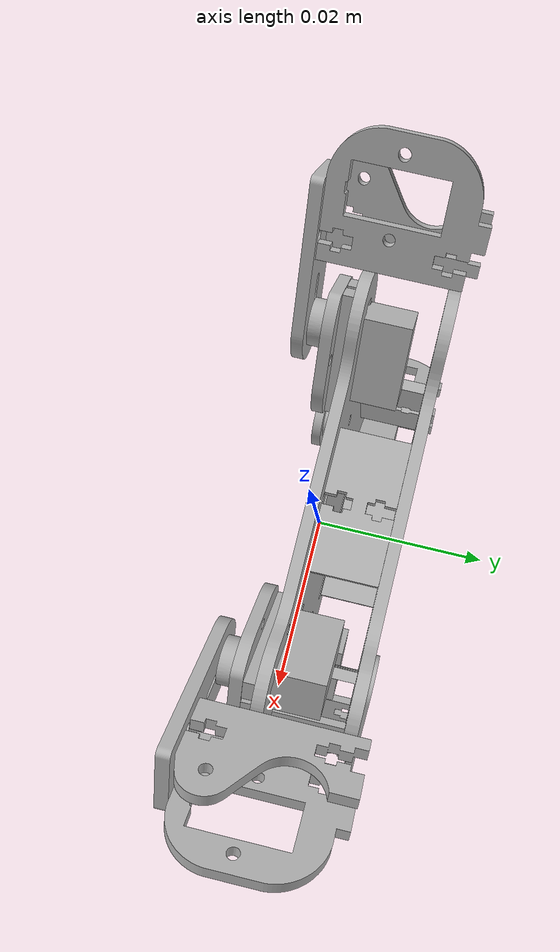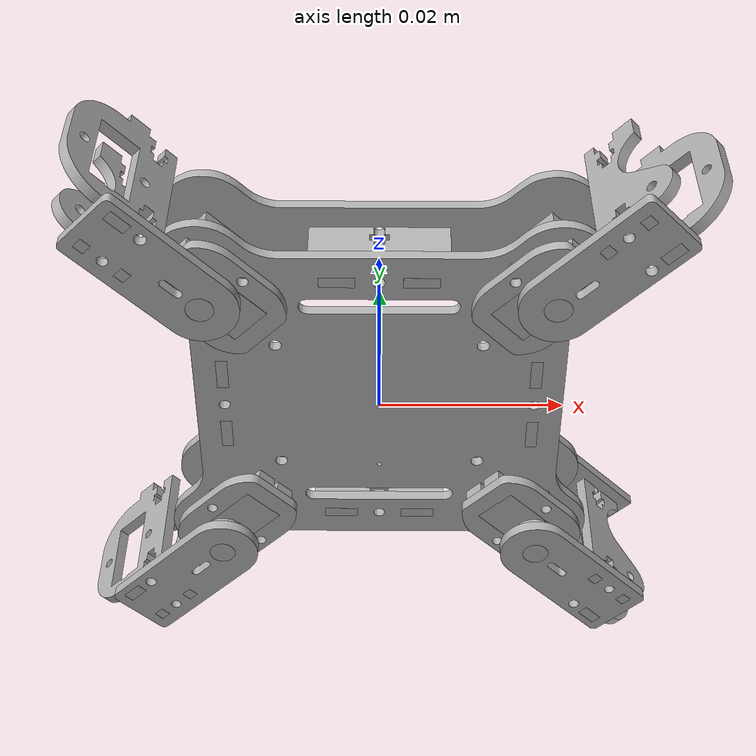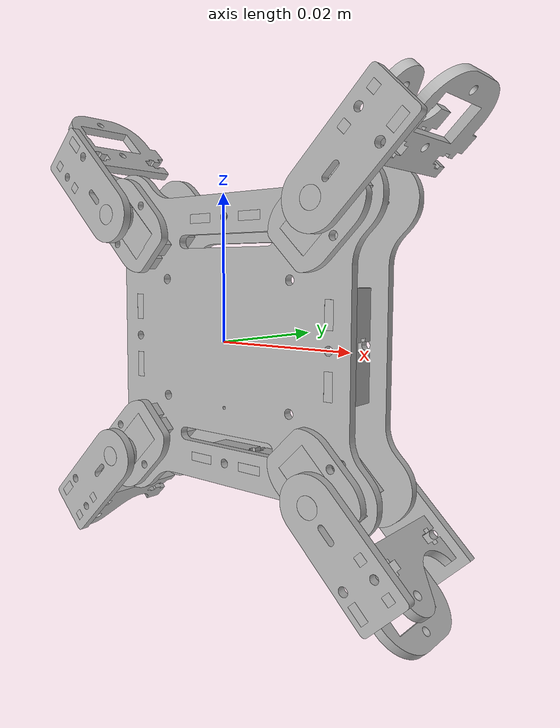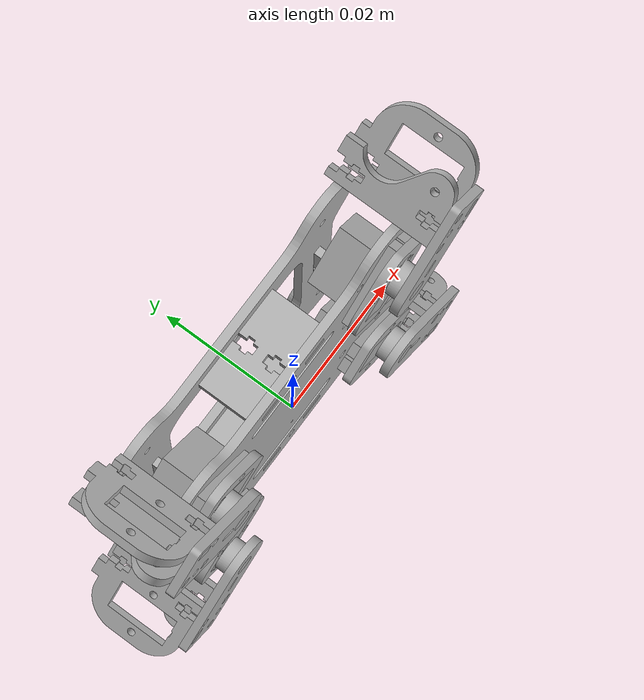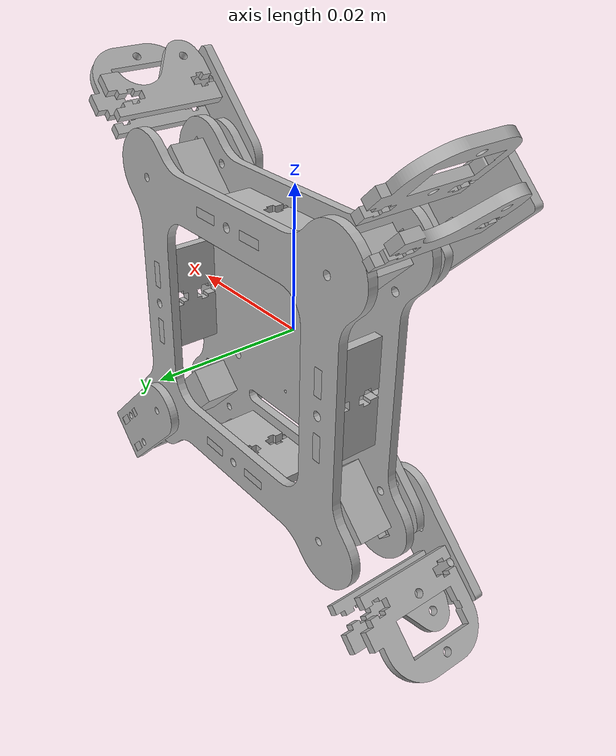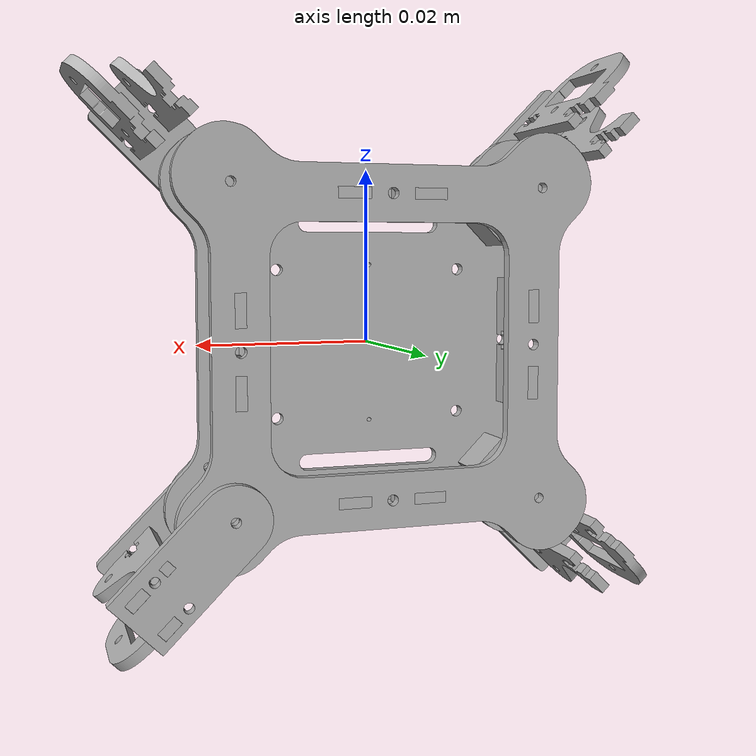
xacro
<?xml version="1.0" ?>
<robot name="Base_link" xmlns:xacro="http://www.ros.org/wiki/xacro">

<xacro:include filename="$(find Base_link_description)/urdf/materials.xacro" />
<xacro:include filename="$(find Base_link_description)/urdf/Base_link.trans" />
<xacro:include filename="$(find Base_link_description)/urdf/Base_link.gazebo" />
<link name="base_link">
  <inertial>
    <origin rpy="0 0 0" xyz="3.5526065091306917e-07 0.009375000059604646 -1.6439403524500656e-06"/>
    <mass value="0.010011445945907986"/>
    <inertia ixx="2e-06" ixy="0.0" ixz="0.0" iyy="5e-06" iyz="-0.0" izz="2e-06"/>
  </inertial>
  <visual>
    <origin rpy="0 0 0" xyz="0 0 0"/>
    <geometry>
      <mesh filename="package://Base_link_description/meshes/base_link.stl" scale="0.001 0.001 0.001"/>
    </geometry>
    <material name="silver"/>
  </visual>
  <collision>
    <origin rpy="0 0 0" xyz="0 0 0"/>
    <geometry>
      <mesh filename="package://Base_link_description/meshes/base_link.stl" scale="0.001 0.001 0.001"/>
    </geometry>
  </collision>
</link>

<link name="body_spacer_v1_1_1_1">
  <inertial>
    <origin rpy="0 0 0" xyz="1.910704176693586e-18 -0.000749999970197676 6.938893903907228e-18"/>
    <mass value="0.001198596877164021"/>
    <inertia ixx="0.0" ixy="-0.0" ixz="0.0" iyy="0.0" iyz="-0.0" izz="0.0"/>
  </inertial>
  <visual>
    <origin rpy="0 0 0" xyz="-0.0 -0.00575 0.016875"/>
    <geometry>
      <mesh filename="package://Base_link_description/meshes/body_spacer_v1_1_1_1.stl" scale="0.001 0.001 0.001"/>
    </geometry>
    <material name="silver"/>
  </visual>
  <collision>
    <origin rpy="0 0 0" xyz="-0.0 -0.00575 0.016875"/>
    <geometry>
      <mesh filename="package://Base_link_description/meshes/body_spacer_v1_1_1_1.stl" scale="0.001 0.001 0.001"/>
    </geometry>
  </collision>
</link>

<link name="body_spacer_v1_2_1_1">
  <inertial>
    <origin rpy="0 0 0" xyz="-6.938893903907228e-18 -0.0007499999701976769 -9.714451465470119e-19"/>
    <mass value="0.001198596877164021"/>
    <inertia ixx="0.0" ixy="0.0" ixz="0.0" iyy="0.0" iyz="0.0" izz="0.0"/>
  </inertial>
  <visual>
    <origin rpy="0 0 0" xyz="-0.016875 -0.00575 0.0"/>
    <geometry>
      <mesh filename="package://Base_link_description/meshes/body_spacer_v1_2_1_1.stl" scale="0.001 0.001 0.001"/>
    </geometry>
    <material name="silver"/>
  </visual>
  <collision>
    <origin rpy="0 0 0" xyz="-0.016875 -0.00575 0.0"/>
    <geometry>
      <mesh filename="package://Base_link_description/meshes/body_spacer_v1_2_1_1.stl" scale="0.001 0.001 0.001"/>
    </geometry>
  </collision>
</link>

<link name="body_spacer_v1_3_1_1">
  <inertial>
    <origin rpy="0 0 0" xyz="-2.150717161437114e-18 -0.0007499999701976751 0.0"/>
    <mass value="0.001198596877164021"/>
    <inertia ixx="0.0" ixy="0.0" ixz="-0.0" iyy="0.0" iyz="0.0" izz="0.0"/>
  </inertial>
  <visual>
    <origin rpy="0 0 0" xyz="0.0 -0.00575 -0.016875"/>
    <geometry>
      <mesh filename="package://Base_link_description/meshes/body_spacer_v1_3_1_1.stl" scale="0.001 0.001 0.001"/>
    </geometry>
    <material name="silver"/>
  </visual>
  <collision>
    <origin rpy="0 0 0" xyz="0.0 -0.00575 -0.016875"/>
    <geometry>
      <mesh filename="package://Base_link_description/meshes/body_spacer_v1_3_1_1.stl" scale="0.001 0.001 0.001"/>
    </geometry>
  </collision>
</link>

<link name="body_spacer_v1_4_1_1">
  <inertial>
    <origin rpy="0 0 0" xyz="0.0 -0.0007499999701976769 1.8041124150158794e-18"/>
    <mass value="0.001198596877164021"/>
    <inertia ixx="0.0" ixy="-0.0" ixz="-0.0" iyy="0.0" iyz="-0.0" izz="0.0"/>
  </inertial>
  <visual>
    <origin rpy="0 0 0" xyz="0.016875 -0.00575 -0.0"/>
    <geometry>
      <mesh filename="package://Base_link_description/meshes/body_spacer_v1_4_1_1.stl" scale="0.001 0.001 0.001"/>
    </geometry>
    <material name="silver"/>
  </visual>
  <collision>
    <origin rpy="0 0 0" xyz="0.016875 -0.00575 -0.0"/>
    <geometry>
      <mesh filename="package://Base_link_description/meshes/body_spacer_v1_4_1_1.stl" scale="0.001 0.001 0.001"/>
    </geometry>
  </collision>
</link>

<link name="body_top_plate_v1_1">
  <inertial>
    <origin rpy="0 0 0" xyz="4.934952913861729e-07 0.0006250000596046458 2.662875822643262e-06"/>
    <mass value="0.01473051492933994"/>
    <inertia ixx="2e-06" ixy="0.0" ixz="-0.0" iyy="4e-06" iyz="0.0" izz="2e-06"/>
  </inertial>
  <visual>
    <origin rpy="0 0 0" xyz="4e-06 -0.0 -2e-06"/>
    <geometry>
      <mesh filename="package://Base_link_description/meshes/body_top_plate_v1_1.stl" scale="0.001 0.001 0.001"/>
    </geometry>
    <material name="silver"/>
  </visual>
  <collision>
    <origin rpy="0 0 0" xyz="4e-06 -0.0 -2e-06"/>
    <geometry>
      <mesh filename="package://Base_link_description/meshes/body_top_plate_v1_1.stl" scale="0.001 0.001 0.001"/>
    </geometry>
  </collision>
</link>

<link name="servo_motor_v1_1">
  <inertial>
    <origin rpy="0 0 0" xyz="-0.0013508261710446674 0.006780947696453059 0.0013508250495978952"/>
    <mass value="0.0004848665871049835"/>
    <inertia ixx="0.0" ixy="0.0" ixz="0.0" iyy="0.0" iyz="-0.0" izz="0.0"/>
  </inertial>
  <visual>
    <origin rpy="0 0 0" xyz="-0.017806 0.00555 0.017806"/>
    <geometry>
      <mesh filename="package://Base_link_description/meshes/servo_motor_v1_1.stl" scale="0.001 0.001 0.001"/>
    </geometry>
    <material name="silver"/>
  </visual>
  <collision>
    <origin rpy="0 0 0" xyz="-0.017806 0.00555 0.017806"/>
    <geometry>
      <mesh filename="package://Base_link_description/meshes/servo_motor_v1_1.stl" scale="0.001 0.001 0.001"/>
    </geometry>
  </collision>
</link>

<link name="servo_motor_v1_2">
  <inertial>
    <origin rpy="0 0 0" xyz="-0.0013508262416907883 0.006780947696453066 0.034261175021048224"/>
    <mass value="0.0004848665871049835"/>
    <inertia ixx="0.0" ixy="0.0" ixz="-0.0" iyy="0.0" iyz="0.0" izz="0.0"/>
  </inertial>
  <visual>
    <origin rpy="0 0 0" xyz="-0.017806 0.00555 0.017806"/>
    <geometry>
      <mesh filename="package://Base_link_description/meshes/servo_motor_v1_2.stl" scale="0.001 0.001 0.001"/>
    </geometry>
    <material name="silver"/>
  </visual>
  <collision>
    <origin rpy="0 0 0" xyz="-0.017806 0.00555 0.017806"/>
    <geometry>
      <mesh filename="package://Base_link_description/meshes/servo_motor_v1_2.stl" scale="0.001 0.001 0.001"/>
    </geometry>
  </collision>
</link>

<link name="servo_motor_v1_3">
  <inertial>
    <origin rpy="0 0 0" xyz="-0.03426118356885484 0.006780947696453063 0.034212932907539614"/>
    <mass value="0.0004848665871049835"/>
    <inertia ixx="0.0" ixy="-0.0" ixz="0.0" iyy="0.0" iyz="0.0" izz="0.0"/>
  </inertial>
  <visual>
    <origin rpy="0 0 0" xyz="-0.017806 0.00555 0.017806"/>
    <geometry>
      <mesh filename="package://Base_link_description/meshes/servo_motor_v1_3.stl" scale="0.001 0.001 0.001"/>
    </geometry>
    <material name="silver"/>
  </visual>
  <collision>
    <origin rpy="0 0 0" xyz="-0.017806 0.00555 0.017806"/>
    <geometry>
      <mesh filename="package://Base_link_description/meshes/servo_motor_v1_3.stl" scale="0.001 0.001 0.001"/>
    </geometry>
  </collision>
</link>

<link name="servo_motor_v1_4">
  <inertial>
    <origin rpy="0 0 0" xyz="-0.034261183498208725 0.006780947696453061 0.001351940764028104"/>
    <mass value="0.0004848665871049835"/>
    <inertia ixx="0.0" ixy="-0.0" ixz="-0.0" iyy="0.0" iyz="-0.0" izz="0.0"/>
  </inertial>
  <visual>
    <origin rpy="0 0 0" xyz="-0.017806 0.00555 0.017806"/>
    <geometry>
      <mesh filename="package://Base_link_description/meshes/servo_motor_v1_4.stl" scale="0.001 0.001 0.001"/>
    </geometry>
    <material name="silver"/>
  </visual>
  <collision>
    <origin rpy="0 0 0" xyz="-0.017806 0.00555 0.017806"/>
    <geometry>
      <mesh filename="package://Base_link_description/meshes/servo_motor_v1_4.stl" scale="0.001 0.001 0.001"/>
    </geometry>
  </collision>
</link>

<link name="leg_servo_retainer_v1_1">
  <inertial>
    <origin rpy="0 0 0" xyz="-7.358861605038722e-05 -0.0006249999403953553 7.439445171635722e-05"/>
    <mass value="0.0007120198480863978"/>
    <inertia ixx="0.0" ixy="0.0" ixz="0.0" iyy="0.0" iyz="-0.0" izz="0.0"/>
  </inertial>
  <visual>
    <origin rpy="0 0 0" xyz="-0.016321 0.00127 0.016323"/>
    <geometry>
      <mesh filename="package://Base_link_description/meshes/leg_servo_retainer_v1_1.stl" scale="0.001 0.001 0.001"/>
    </geometry>
    <material name="silver"/>
  </visual>
  <collision>
    <origin rpy="0 0 0" xyz="-0.016321 0.00127 0.016323"/>
    <geometry>
      <mesh filename="package://Base_link_description/meshes/leg_servo_retainer_v1_1.stl" scale="0.001 0.001 0.001"/>
    </geometry>
  </collision>
</link>

<link name="leg_servo_retainer_v1_2">
  <inertial>
    <origin rpy="0 0 0" xyz="-7.409009750477397e-05 -0.0006249999403953553 0.032576253306189185"/>
    <mass value="0.0007120198480863978"/>
    <inertia ixx="0.0" ixy="0.0" ixz="-0.0" iyy="0.0" iyz="0.0" izz="0.0"/>
  </inertial>
  <visual>
    <origin rpy="0 0 0" xyz="-0.016321 0.00127 0.016323"/>
    <geometry>
      <mesh filename="package://Base_link_description/meshes/leg_servo_retainer_v1_2.stl" scale="0.001 0.001 0.001"/>
    </geometry>
    <material name="silver"/>
  </visual>
  <collision>
    <origin rpy="0 0 0" xyz="-0.016321 0.00127 0.016323"/>
    <geometry>
      <mesh filename="package://Base_link_description/meshes/leg_servo_retainer_v1_2.stl" scale="0.001 0.001 0.001"/>
    </geometry>
  </collision>
</link>

<link name="leg_servo_retainer_v1_3">
  <inertial>
    <origin rpy="0 0 0" xyz="-0.032575948951977615 -0.0006249999403953564 0.03257575182473469"/>
    <mass value="0.0007120198480863978"/>
    <inertia ixx="0.0" ixy="0.0" ixz="0.0" iyy="0.0" iyz="-0.0" izz="0.0"/>
  </inertial>
  <visual>
    <origin rpy="0 0 0" xyz="-0.016321 0.00127 0.016323"/>
    <geometry>
      <mesh filename="package://Base_link_description/meshes/leg_servo_retainer_v1_3.stl" scale="0.001 0.001 0.001"/>
    </geometry>
    <material name="silver"/>
  </visual>
  <collision>
    <origin rpy="0 0 0" xyz="-0.016321 0.00127 0.016323"/>
    <geometry>
      <mesh filename="package://Base_link_description/meshes/leg_servo_retainer_v1_3.stl" scale="0.001 0.001 0.001"/>
    </geometry>
  </collision>
</link>

<link name="leg_servo_retainer_v1_4">
  <inertial>
    <origin rpy="0 0 0" xyz="-0.03255044747052323 -0.0006249999403953551 9.889297026197119e-05"/>
    <mass value="0.0007120198480863978"/>
    <inertia ixx="0.0" ixy="0.0" ixz="-0.0" iyy="0.0" iyz="-0.0" izz="0.0"/>
  </inertial>
  <visual>
    <origin rpy="0 0 0" xyz="-0.016321 0.00127 0.016323"/>
    <geometry>
      <mesh filename="package://Base_link_description/meshes/leg_servo_retainer_v1_4.stl" scale="0.001 0.001 0.001"/>
    </geometry>
    <material name="silver"/>
  </visual>
  <collision>
    <origin rpy="0 0 0" xyz="-0.016321 0.00127 0.016323"/>
    <geometry>
      <mesh filename="package://Base_link_description/meshes/leg_servo_retainer_v1_4.stl" scale="0.001 0.001 0.001"/>
    </geometry>
  </collision>
</link>

<link name="leg_top_pivot_plate_v1_1">
  <inertial>
    <origin rpy="0 0 0" xyz="0.004176127215360273 0.0006250000596046473 -0.004148158293409882"/>
    <mass value="0.0012497785111649892"/>
    <inertia ixx="0.0" ixy="0.0" ixz="0.0" iyy="0.0" iyz="0.0" izz="0.0"/>
  </inertial>
  <visual>
    <origin rpy="0 0 0" xyz="-0.017806 0.00555 0.017806"/>
    <geometry>
      <mesh filename="package://Base_link_description/meshes/leg_top_pivot_plate_v1_1.stl" scale="0.001 0.001 0.001"/>
    </geometry>
    <material name="silver"/>
  </visual>
  <collision>
    <origin rpy="0 0 0" xyz="-0.017806 0.00555 0.017806"/>
    <geometry>
      <mesh filename="package://Base_link_description/meshes/leg_top_pivot_plate_v1_1.stl" scale="0.001 0.001 0.001"/>
    </geometry>
  </collision>
</link>

<link name="leg_top_pivot_plate_v1_2">
  <inertial>
    <origin rpy="0 0 0" xyz="0.004148157101316982 0.0006250000596046568 0.03978812840745315"/>
    <mass value="0.0012497785111649892"/>
    <inertia ixx="0.0" ixy="0.0" ixz="-0.0" iyy="0.0" iyz="0.0" izz="0.0"/>
  </inertial>
  <visual>
    <origin rpy="0 0 0" xyz="-0.017806 0.00555 0.017806"/>
    <geometry>
      <mesh filename="package://Base_link_description/meshes/leg_top_pivot_plate_v1_2.stl" scale="0.001 0.001 0.001"/>
    </geometry>
    <material name="silver"/>
  </visual>
  <collision>
    <origin rpy="0 0 0" xyz="-0.017806 0.00555 0.017806"/>
    <geometry>
      <mesh filename="package://Base_link_description/meshes/leg_top_pivot_plate_v1_2.stl" scale="0.001 0.001 0.001"/>
    </geometry>
  </collision>
</link>

<link name="leg_top_pivot_plate_v1_3">
  <inertial>
    <origin rpy="0 0 0" xyz="-0.039788136955259776 0.0006250000596046508 0.0397119162505474"/>
    <mass value="0.0012497785111649892"/>
    <inertia ixx="0.0" ixy="-0.0" ixz="0.0" iyy="0.0" iyz="0.0" izz="0.0"/>
  </inertial>
  <visual>
    <origin rpy="0 0 0" xyz="-0.017806 0.00555 0.017806"/>
    <geometry>
      <mesh filename="package://Base_link_description/meshes/leg_top_pivot_plate_v1_3.stl" scale="0.001 0.001 0.001"/>
    </geometry>
    <material name="silver"/>
  </visual>
  <collision>
    <origin rpy="0 0 0" xyz="-0.017806 0.00555 0.017806"/>
    <geometry>
      <mesh filename="package://Base_link_description/meshes/leg_top_pivot_plate_v1_3.stl" scale="0.001 0.001 0.001"/>
    </geometry>
  </collision>
</link>

<link name="leg_top_pivot_plate_v1_4">
  <inertial>
    <origin rpy="0 0 0" xyz="-0.039760166841216506 0.0006250000596046508 -0.004175012622376836"/>
    <mass value="0.0012497785111649892"/>
    <inertia ixx="0.0" ixy="-0.0" ixz="-0.0" iyy="0.0" iyz="-0.0" izz="0.0"/>
  </inertial>
  <visual>
    <origin rpy="0 0 0" xyz="-0.017806 0.00555 0.017806"/>
    <geometry>
      <mesh filename="package://Base_link_description/meshes/leg_top_pivot_plate_v1_4.stl" scale="0.001 0.001 0.001"/>
    </geometry>
    <material name="silver"/>
  </visual>
  <collision>
    <origin rpy="0 0 0" xyz="-0.017806 0.00555 0.017806"/>
    <geometry>
      <mesh filename="package://Base_link_description/meshes/leg_top_pivot_plate_v1_4.stl" scale="0.001 0.001 0.001"/>
    </geometry>
  </collision>
</link>

<link name="leg_servo_mount_v1_1">
  <inertial>
    <origin rpy="0 0 0" xyz="0.00251985940472043 0.004113778478571477 -0.002520105113429757"/>
    <mass value="0.001144548758330191"/>
    <inertia ixx="0.0" ixy="-0.0" ixz="0.0" iyy="0.0" iyz="0.0" izz="0.0"/>
  </inertial>
  <visual>
    <origin rpy="0 0 0" xyz="-0.022859 0.00105 0.026465"/>
    <geometry>
      <mesh filename="package://Base_link_description/meshes/leg_servo_mount_v1_1.stl" scale="0.001 0.001 0.001"/>
    </geometry>
    <material name="silver"/>
  </visual>
  <collision>
    <origin rpy="0 0 0" xyz="-0.022859 0.00105 0.026465"/>
    <geometry>
      <mesh filename="package://Base_link_description/meshes/leg_servo_mount_v1_1.stl" scale="0.001 0.001 0.001"/>
    </geometry>
  </collision>
</link>

<link name="leg_servo_mount_v1_2">
  <inertial>
    <origin rpy="0 0 0" xyz="0.006126103921336862 0.004113778478571479 0.051843860596813285"/>
    <mass value="0.001144548758330191"/>
    <inertia ixx="0.0" ixy="-0.0" ixz="-0.0" iyy="0.0" iyz="-0.0" izz="0.0"/>
  </inertial>
  <visual>
    <origin rpy="0 0 0" xyz="-0.022859 0.00105 0.026465"/>
    <geometry>
      <mesh filename="package://Base_link_description/meshes/leg_servo_mount_v1_2.stl" scale="0.001 0.001 0.001"/>
    </geometry>
    <material name="silver"/>
  </visual>
  <collision>
    <origin rpy="0 0 0" xyz="-0.022859 0.00105 0.026465"/>
    <geometry>
      <mesh filename="package://Base_link_description/meshes/leg_servo_mount_v1_2.stl" scale="0.001 0.001 0.001"/>
    </geometry>
  </collision>
</link>

<link name="leg_servo_mount_v1_3">
  <inertial>
    <origin rpy="0 0 0" xyz="-0.051844113661236396 0.00411377847857148 0.0010872551882629977"/>
    <mass value="0.001144548758330191"/>
    <inertia ixx="0.0" ixy="0.0" ixz="-0.0" iyy="0.0" iyz="0.0" izz="0.0"/>
  </inertial>
  <visual>
    <origin rpy="0 0 0" xyz="-0.022859 0.00105 0.026465"/>
    <geometry>
      <mesh filename="package://Base_link_description/meshes/leg_servo_mount_v1_3.stl" scale="0.001 0.001 0.001"/>
    </geometry>
    <material name="silver"/>
  </visual>
  <collision>
    <origin rpy="0 0 0" xyz="-0.022859 0.00105 0.026465"/>
    <geometry>
      <mesh filename="package://Base_link_description/meshes/leg_servo_mount_v1_3.stl" scale="0.001 0.001 0.001"/>
    </geometry>
  </collision>
</link>

<link name="leg_servo_mount_v1_4">
  <inertial>
    <origin rpy="0 0 0" xyz="-0.04823786914461993 0.004113778478571477 0.05540186307056726"/>
    <mass value="0.001144548758330191"/>
    <inertia ixx="0.0" ixy="0.0" ixz="0.0" iyy="0.0" iyz="-0.0" izz="0.0"/>
  </inertial>
  <visual>
    <origin rpy="0 0 0" xyz="-0.022859 0.00105 0.026465"/>
    <geometry>
      <mesh filename="package://Base_link_description/meshes/leg_servo_mount_v1_4.stl" scale="0.001 0.001 0.001"/>
    </geometry>
    <material name="silver"/>
  </visual>
  <collision>
    <origin rpy="0 0 0" xyz="-0.022859 0.00105 0.026465"/>
    <geometry>
      <mesh filename="package://Base_link_description/meshes/leg_servo_mount_v1_4.stl" scale="0.001 0.001 0.001"/>
    </geometry>
  </collision>
</link>

<link name="leg_parallel_plate_v1_1">
  <inertial>
    <origin rpy="0 0 0" xyz="0.00031741714756083547 0.003050233586176742 -0.0003169963388769473"/>
    <mass value="0.000869495656702597"/>
    <inertia ixx="0.0" ixy="0.0" ixz="0.0" iyy="0.0" iyz="-0.0" izz="0.0"/>
  </inertial>
  <visual>
    <origin rpy="0 0 0" xyz="-0.026786 0.00105 0.023859"/>
    <geometry>
      <mesh filename="package://Base_link_description/meshes/leg_parallel_plate_v1_1.stl" scale="0.001 0.001 0.001"/>
    </geometry>
    <material name="silver"/>
  </visual>
  <collision>
    <origin rpy="0 0 0" xyz="-0.026786 0.00105 0.023859"/>
    <geometry>
      <mesh filename="package://Base_link_description/meshes/leg_parallel_plate_v1_1.stl" scale="0.001 0.001 0.001"/>
    </geometry>
  </collision>
</link>

<link name="leg_parallel_plate_v1_2">
  <inertial>
    <origin rpy="0 0 0" xyz="-0.0026100048532159345 0.0030502335861767515 0.05096241833965374"/>
    <mass value="0.000869495656702597"/>
    <inertia ixx="0.0" ixy="0.0" ixz="-0.0" iyy="0.0" iyz="0.0" izz="0.0"/>
  </inertial>
  <visual>
    <origin rpy="0 0 0" xyz="-0.026786 0.00105 0.023859"/>
    <geometry>
      <mesh filename="package://Base_link_description/meshes/leg_parallel_plate_v1_2.stl" scale="0.001 0.001 0.001"/>
    </geometry>
    <material name="silver"/>
  </visual>
  <collision>
    <origin rpy="0 0 0" xyz="-0.026786 0.00105 0.023859"/>
    <geometry>
      <mesh filename="package://Base_link_description/meshes/leg_parallel_plate_v1_2.stl" scale="0.001 0.001 0.001"/>
    </geometry>
  </collision>
</link>

<link name="leg_parallel_plate_v1_3">
  <inertial>
    <origin rpy="0 0 0" xyz="-0.05096200488668359 0.0030502335861767454 -0.0032433025545774118"/>
    <mass value="0.000869495656702597"/>
    <inertia ixx="0.0" ixy="-0.0" ixz="-0.0" iyy="0.0" iyz="-0.0" izz="0.0"/>
  </inertial>
  <visual>
    <origin rpy="0 0 0" xyz="-0.026786 0.00105 0.023859"/>
    <geometry>
      <mesh filename="package://Base_link_description/meshes/leg_parallel_plate_v1_3.stl" scale="0.001 0.001 0.001"/>
    </geometry>
    <material name="silver"/>
  </visual>
  <collision>
    <origin rpy="0 0 0" xyz="-0.026786 0.00105 0.023859"/>
    <geometry>
      <mesh filename="package://Base_link_description/meshes/leg_parallel_plate_v1_3.stl" scale="0.001 0.001 0.001"/>
    </geometry>
  </collision>
</link>

<link name="leg_parallel_plate_v1_4">
  <inertial>
    <origin rpy="0 0 0" xyz="-0.053889426887460366 0.0030502335861767446 0.04798675429601447"/>
    <mass value="0.000869495656702597"/>
    <inertia ixx="0.0" ixy="-0.0" ixz="0.0" iyy="0.0" iyz="0.0" izz="0.0"/>
  </inertial>
  <visual>
    <origin rpy="0 0 0" xyz="-0.026786 0.00105 0.023859"/>
    <geometry>
      <mesh filename="package://Base_link_description/meshes/leg_parallel_plate_v1_4.stl" scale="0.001 0.001 0.001"/>
    </geometry>
    <material name="silver"/>
  </visual>
  <collision>
    <origin rpy="0 0 0" xyz="-0.026786 0.00105 0.023859"/>
    <geometry>
      <mesh filename="package://Base_link_description/meshes/leg_parallel_plate_v1_4.stl" scale="0.001 0.001 0.001"/>
    </geometry>
  </collision>
</link>

<link name="bottom_pivot_plate_v1_1">
  <inertial>
    <origin rpy="0 0 0" xyz="0.003924493197375523 0.0006250000596046482 -0.0039400877533866535"/>
    <mass value="0.00131675130911231"/>
    <inertia ixx="0.0" ixy="0.0" ixz="0.0" iyy="0.0" iyz="0.0" izz="0.0"/>
  </inertial>
  <visual>
    <origin rpy="0 0 0" xyz="-0.017806 -0.01 0.017806"/>
    <geometry>
      <mesh filename="package://Base_link_description/meshes/bottom_pivot_plate_v1_1.stl" scale="0.001 0.001 0.001"/>
    </geometry>
    <material name="silver"/>
  </visual>
  <collision>
    <origin rpy="0 0 0" xyz="-0.017806 -0.01 0.017806"/>
    <geometry>
      <mesh filename="package://Base_link_description/meshes/bottom_pivot_plate_v1_1.stl" scale="0.001 0.001 0.001"/>
    </geometry>
  </collision>
</link>

<joint name="Rigid10" type="fixed">
  <origin rpy="0 0 0" xyz="0.0 0.00575 -0.016875"/>
  <parent link="base_link"/>
  <child link="body_spacer_v1_1_1_1"/>
</joint>

<joint name="Rigid11" type="fixed">
  <origin rpy="0 0 0" xyz="0.016875 0.00575 0.0"/>
  <parent link="base_link"/>
  <child link="body_spacer_v1_2_1_1"/>
</joint>

<joint name="Rigid12" type="fixed">
  <origin rpy="0 0 0" xyz="0.0 0.00575 0.016875"/>
  <parent link="base_link"/>
  <child link="body_spacer_v1_3_1_1"/>
</joint>

<joint name="Rigid17" type="fixed">
  <origin rpy="0 0 0" xyz="-0.016875 0.00575 0.0"/>
  <parent link="base_link"/>
  <child link="body_spacer_v1_4_1_1"/>
</joint>

<joint name="Rigid63" type="fixed">
  <origin rpy="0 0 0" xyz="-4e-06 0.0 2e-06"/>
  <parent link="base_link"/>
  <child link="body_top_plate_v1_1"/>
</joint>

<joint name="Rigid64" type="fixed">
  <origin rpy="0 0 0" xyz="0.017806 -0.00555 -0.017806"/>
  <parent link="base_link"/>
  <child link="servo_motor_v1_1"/>
</joint>

<joint name="Rigid65" type="fixed">
  <origin rpy="0 0 0" xyz="0.017806 -0.00555 -0.017806"/>
  <parent link="base_link"/>
  <child link="servo_motor_v1_2"/>
</joint>

<joint name="Rigid66" type="fixed">
  <origin rpy="0 0 0" xyz="0.017806 -0.00555 -0.017806"/>
  <parent link="base_link"/>
  <child link="servo_motor_v1_3"/>
</joint>

<joint name="Rigid67" type="fixed">
  <origin rpy="0 0 0" xyz="0.017806 -0.00555 -0.017806"/>
  <parent link="base_link"/>
  <child link="servo_motor_v1_4"/>
</joint>

<joint name="Rigid68" type="fixed">
  <origin rpy="0 0 0" xyz="0.016325 -0.00127 -0.016325"/>
  <parent link="body_top_plate_v1_1"/>
  <child link="leg_servo_retainer_v1_1"/>
</joint>

<joint name="Rigid69" type="fixed">
  <origin rpy="0 0 0" xyz="0.016325 -0.00127 -0.016325"/>
  <parent link="body_top_plate_v1_1"/>
  <child link="leg_servo_retainer_v1_2"/>
</joint>

<joint name="Rigid70" type="fixed">
  <origin rpy="0 0 0" xyz="0.016325 -0.00127 -0.016325"/>
  <parent link="body_top_plate_v1_1"/>
  <child link="leg_servo_retainer_v1_3"/>
</joint>

<joint name="Rigid71" type="fixed">
  <origin rpy="0 0 0" xyz="0.016325 -0.00127 -0.016325"/>
  <parent link="body_top_plate_v1_1"/>
  <child link="leg_servo_retainer_v1_4"/>
</joint>

<joint name="Rev72" type="continuous">
  <origin rpy="0 0 0" xyz="0.0 0.0 0.0"/>
  <parent link="servo_motor_v1_1"/>
  <child link="leg_top_pivot_plate_v1_1"/>
  <axis xyz="0.0 -1.0 0.0"/>
</joint>

<joint name="Rev73" type="continuous">
  <origin rpy="0 0 0" xyz="0.0 0.0 0.0"/>
  <parent link="servo_motor_v1_2"/>
  <child link="leg_top_pivot_plate_v1_2"/>
  <axis xyz="0.0 -1.0 -0.0"/>
</joint>

<joint name="Rev74" type="continuous">
  <origin rpy="0 0 0" xyz="0.0 0.0 0.0"/>
  <parent link="servo_motor_v1_3"/>
  <child link="leg_top_pivot_plate_v1_3"/>
  <axis xyz="0.0 -1.0 0.0"/>
</joint>

<joint name="Rev75" type="continuous">
  <origin rpy="0 0 0" xyz="0.0 0.0 0.0"/>
  <parent link="servo_motor_v1_4"/>
  <child link="leg_top_pivot_plate_v1_4"/>
  <axis xyz="0.0 -1.0 0.0"/>
</joint>

<joint name="Rigid76" type="fixed">
  <origin rpy="0 0 0" xyz="0.005053 0.0045 -0.008659"/>
  <parent link="leg_top_pivot_plate_v1_1"/>
  <child link="leg_servo_mount_v1_1"/>
</joint>

<joint name="Rigid77" type="fixed">
  <origin rpy="0 0 0" xyz="0.005053 0.0045 -0.008659"/>
  <parent link="leg_top_pivot_plate_v1_2"/>
  <child link="leg_servo_mount_v1_2"/>
</joint>

<joint name="Rigid78" type="fixed">
  <origin rpy="0 0 0" xyz="0.005053 0.0045 -0.008659"/>
  <parent link="leg_top_pivot_plate_v1_4"/>
  <child link="leg_servo_mount_v1_3"/>
</joint>

<joint name="Rigid79" type="fixed">
  <origin rpy="0 0 0" xyz="0.005053 0.0045 -0.008659"/>
  <parent link="leg_top_pivot_plate_v1_3"/>
  <child link="leg_servo_mount_v1_4"/>
</joint>

<joint name="Rigid80" type="fixed">
  <origin rpy="0 0 0" xyz="0.00898 0.0045 -0.006053"/>
  <parent link="leg_top_pivot_plate_v1_1"/>
  <child link="leg_parallel_plate_v1_1"/>
</joint>

<joint name="Rigid81" type="fixed">
  <origin rpy="0 0 0" xyz="0.00898 0.0045 -0.006053"/>
  <parent link="leg_top_pivot_plate_v1_2"/>
  <child link="leg_parallel_plate_v1_2"/>
</joint>

<joint name="Rigid82" type="fixed">
  <origin rpy="0 0 0" xyz="0.00898 0.0045 -0.006053"/>
  <parent link="leg_top_pivot_plate_v1_4"/>
  <child link="leg_parallel_plate_v1_3"/>
</joint>

<joint name="Rigid83" type="fixed">
  <origin rpy="0 0 0" xyz="0.00898 0.0045 -0.006053"/>
  <parent link="leg_top_pivot_plate_v1_3"/>
  <child link="leg_parallel_plate_v1_4"/>
</joint>

<joint name="Rev84" type="continuous">
  <origin rpy="0 0 0" xyz="0.017806 0.01 -0.017806"/>
  <parent link="base_link"/>
  <child link="bottom_pivot_plate_v1_1"/>
  <axis xyz="0.0 -1.0 0.0"/>
</joint>

</robot>

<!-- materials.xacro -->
<robot name="Base_link" xmlns:xacro="http://www.ros.org/wiki/xacro" >

<material name="silver">
  <color rgba="0.700 0.700 0.700 1.000"/>
</material>

</robot>

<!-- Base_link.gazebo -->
<robot name="Base_link" xmlns:xacro="http://www.ros.org/wiki/xacro" >

<xacro:property name="body_color" value="Gazebo/Silver" />

<gazebo>
  <plugin filename="libgazebo_ros_control.so" name="control"/>
</gazebo>
<gazebo reference="base_link">
  <material>${body_color}</material>
  <mu1>0.2</mu1>
  <mu2>0.2</mu2>
  <selfCollide>true</selfCollide>
  <gravity>true</gravity>
</gazebo>

<gazebo reference="body_spacer_v1_1_1_1">
  <material>${body_color}</material>
  <mu1>0.2</mu1>
  <mu2>0.2</mu2>
  <selfCollide>true</selfCollide>
</gazebo>

<gazebo reference="body_spacer_v1_2_1_1">
  <material>${body_color}</material>
  <mu1>0.2</mu1>
  <mu2>0.2</mu2>
  <selfCollide>true</selfCollide>
</gazebo>

<gazebo reference="body_spacer_v1_3_1_1">
  <material>${body_color}</material>
  <mu1>0.2</mu1>
  <mu2>0.2</mu2>
  <selfCollide>true</selfCollide>
</gazebo>

<gazebo reference="body_spacer_v1_4_1_1">
  <material>${body_color}</material>
  <mu1>0.2</mu1>
  <mu2>0.2</mu2>
  <selfCollide>true</selfCollide>
</gazebo>

<gazebo reference="body_top_plate_v1_1">
  <material>${body_color}</material>
  <mu1>0.2</mu1>
  <mu2>0.2</mu2>
  <selfCollide>true</selfCollide>
</gazebo>

<gazebo reference="servo_motor_v1_1">
  <material>${body_color}</material>
  <mu1>0.2</mu1>
  <mu2>0.2</mu2>
  <selfCollide>true</selfCollide>
</gazebo>

<gazebo reference="servo_motor_v1_2">
  <material>${body_color}</material>
  <mu1>0.2</mu1>
  <mu2>0.2</mu2>
  <selfCollide>true</selfCollide>
</gazebo>

<gazebo reference="servo_motor_v1_3">
  <material>${body_color}</material>
  <mu1>0.2</mu1>
  <mu2>0.2</mu2>
  <selfCollide>true</selfCollide>
</gazebo>

<gazebo reference="servo_motor_v1_4">
  <material>${body_color}</material>
  <mu1>0.2</mu1>
  <mu2>0.2</mu2>
  <selfCollide>true</selfCollide>
</gazebo>

<gazebo reference="leg_servo_retainer_v1_1">
  <material>${body_color}</material>
  <mu1>0.2</mu1>
  <mu2>0.2</mu2>
  <selfCollide>true</selfCollide>
</gazebo>

<gazebo reference="leg_servo_retainer_v1_2">
  <material>${body_color}</material>
  <mu1>0.2</mu1>
  <mu2>0.2</mu2>
  <selfCollide>true</selfCollide>
</gazebo>

<gazebo reference="leg_servo_retainer_v1_3">
  <material>${body_color}</material>
  <mu1>0.2</mu1>
  <mu2>0.2</mu2>
  <selfCollide>true</selfCollide>
</gazebo>

<gazebo reference="leg_servo_retainer_v1_4">
  <material>${body_color}</material>
  <mu1>0.2</mu1>
  <mu2>0.2</mu2>
  <selfCollide>true</selfCollide>
</gazebo>

<gazebo reference="leg_top_pivot_plate_v1_1">
  <material>${body_color}</material>
  <mu1>0.2</mu1>
  <mu2>0.2</mu2>
  <selfCollide>true</selfCollide>
</gazebo>

<gazebo reference="leg_top_pivot_plate_v1_2">
  <material>${body_color}</material>
  <mu1>0.2</mu1>
  <mu2>0.2</mu2>
  <selfCollide>true</selfCollide>
</gazebo>

<gazebo reference="leg_top_pivot_plate_v1_3">
  <material>${body_color}</material>
  <mu1>0.2</mu1>
  <mu2>0.2</mu2>
  <selfCollide>true</selfCollide>
</gazebo>

<gazebo reference="leg_top_pivot_plate_v1_4">
  <material>${body_color}</material>
  <mu1>0.2</mu1>
  <mu2>0.2</mu2>
  <selfCollide>true</selfCollide>
</gazebo>

<gazebo reference="leg_servo_mount_v1_1">
  <material>${body_color}</material>
  <mu1>0.2</mu1>
  <mu2>0.2</mu2>
  <selfCollide>true</selfCollide>
</gazebo>

<gazebo reference="leg_servo_mount_v1_2">
  <material>${body_color}</material>
  <mu1>0.2</mu1>
  <mu2>0.2</mu2>
  <selfCollide>true</selfCollide>
</gazebo>

<gazebo reference="leg_servo_mount_v1_3">
  <material>${body_color}</material>
  <mu1>0.2</mu1>
  <mu2>0.2</mu2>
  <selfCollide>true</selfCollide>
</gazebo>

<gazebo reference="leg_servo_mount_v1_4">
  <material>${body_color}</material>
  <mu1>0.2</mu1>
  <mu2>0.2</mu2>
  <selfCollide>true</selfCollide>
</gazebo>

<gazebo reference="leg_parallel_plate_v1_1">
  <material>${body_color}</material>
  <mu1>0.2</mu1>
  <mu2>0.2</mu2>
  <selfCollide>true</selfCollide>
</gazebo>

<gazebo reference="leg_parallel_plate_v1_2">
  <material>${body_color}</material>
  <mu1>0.2</mu1>
  <mu2>0.2</mu2>
  <selfCollide>true</selfCollide>
</gazebo>

<gazebo reference="leg_parallel_plate_v1_3">
  <material>${body_color}</material>
  <mu1>0.2</mu1>
  <mu2>0.2</mu2>
  <selfCollide>true</selfCollide>
</gazebo>

<gazebo reference="leg_parallel_plate_v1_4">
  <material>${body_color}</material>
  <mu1>0.2</mu1>
  <mu2>0.2</mu2>
  <selfCollide>true</selfCollide>
</gazebo>

<gazebo reference="bottom_pivot_plate_v1_1">
  <material>${body_color}</material>
  <mu1>0.2</mu1>
  <mu2>0.2</mu2>
  <selfCollide>true</selfCollide>
</gazebo>

</robot>
